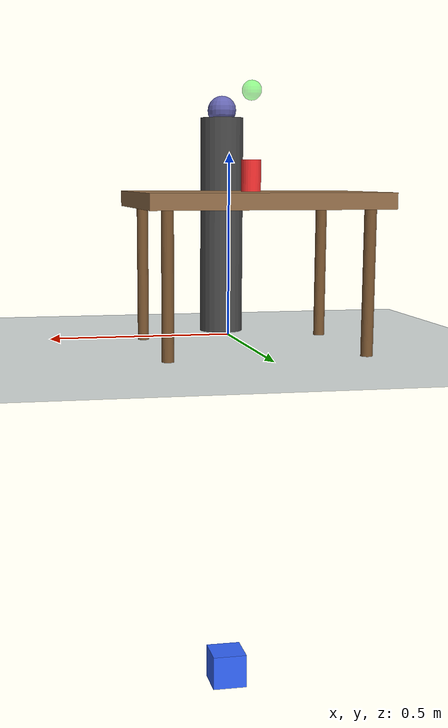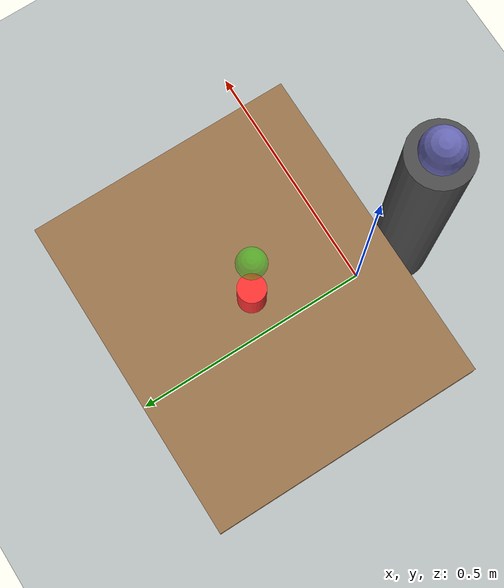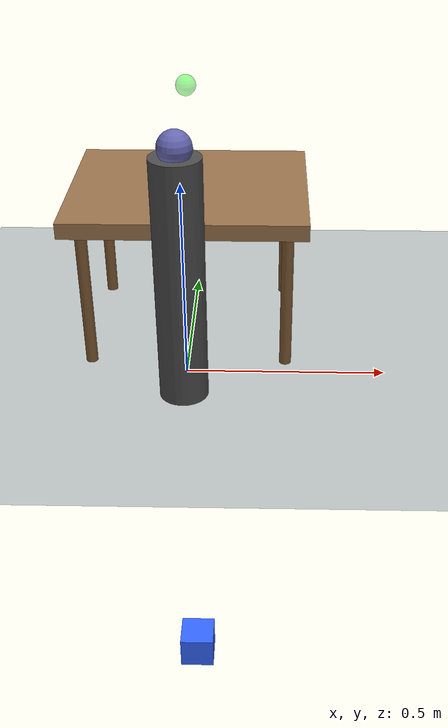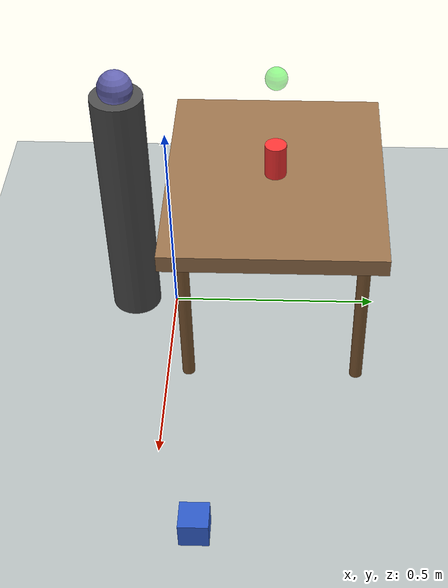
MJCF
<?xml version='1.0' encoding='utf-8'?>
<mujoco model="SimpleArm_scene">
  <option timestep="0.002" />
  <include file="bot.xml" />
  <statistic extent="2" center="0 0.1 0.4" />
  <visual>
    <headlight ambient=".4 .4 .4" diffuse=".8 .8 .8" specular="0.1 0.1 0.1" />
    <map znear="0.01" />
    <quality shadowsize="2048" />
  </visual>
  <asset>
    <texture type="skybox" builtin="gradient" rgb1="0.3 0.5 0.7" rgb2="0 0 0"
             width="512" height="3072" />
    <texture type="2d" name="groundplane" builtin="checker" mark="edge"
             rgb1="0.2 0.3 0.4" rgb2="0.1 0.2 0.3" markrgb="0.8 0.8 0.8"
             width="300" height="300" />
    <material name="groundplane" texture="groundplane" texuniform="true"
              texrepeat="5 5" reflectance="0.2" />
  </asset>
  <worldbody>
    <light directional="true" diffuse=".8 .8 .8" pos="0 0 10" dir="0 0 -1" />
    <geom name="floor" type="plane" size="2 2 0.1" material="groundplane"
          contype="1" conaffinity="3" />

    <!-- Workspace camera: angled overhead view of table and arm -->
    <camera name="camera_1_cam" fovy="60"
            pos="0.7 -0.4 1.0" xyaxes="-0.4 1 0 -0.3 -0.12 0.95" />

    <!-- Table surface (top at z=0.40) — contype=1 so arm (contype=2) passes through -->
    <geom name="table_surface" type="box" size="0.30 0.25 0.02"
          pos="0 0.25 0.38" rgba="0.6 0.45 0.3 1.0"
          contype="1" conaffinity="1"
          solref="0.005 1" solimp="0.999 0.9999 0.001 0.5 2" />
    <!-- Table legs -->
    <geom name="table_leg_1" type="cylinder" size="0.015 0.18"
          pos="0.25 0.05 0.18" rgba="0.5 0.35 0.2 1.0"
          contype="1" conaffinity="1" />
    <geom name="table_leg_2" type="cylinder" size="0.015 0.18"
          pos="-0.25 0.05 0.18" rgba="0.5 0.35 0.2 1.0"
          contype="1" conaffinity="1" />
    <geom name="table_leg_3" type="cylinder" size="0.015 0.18"
          pos="0.25 0.45 0.18" rgba="0.5 0.35 0.2 1.0"
          contype="1" conaffinity="1" />
    <geom name="table_leg_4" type="cylinder" size="0.015 0.18"
          pos="-0.25 0.45 0.18" rgba="0.5 0.35 0.2 1.0"
          contype="1" conaffinity="1" />

    <!-- Cup: free body on the table (graspable object) -->
    <body name="cup" pos="0 0.25 0.44">
      <freejoint name="cup_joint" />
      <inertial pos="0 0 0" mass="0.05"
                fullinertia="0.00002 0.00002 0.00001 0 0 0" />
      <geom name="cup_geom" type="cylinder" size="0.025 0.04"
            rgba="1.0 0.2 0.2 1.0" friction="1.5 0.5 0.01"
            contype="3" conaffinity="3" />
    </body>

    <!-- Target: visual marker for lift goal (where to bring the cup) -->
    <body name="target" mocap="true" pos="0 0.25 0.65">
      <geom name="target_marker" type="sphere" size="0.025"
            rgba="0.0 1.0 0.0 0.4" contype="0" conaffinity="0" />
    </body>

    <!-- Distractors (hidden below ground, required by base env) -->
    <body name="distractor_0" mocap="true" pos="0 0 -1">
      <geom name="distractor_0_cube" type="box" size="0.05 0.05 0.05"
            rgba="0.2 0.4 1.0 1.0" contype="0" conaffinity="0" />
    </body>
    <body name="distractor_1" mocap="true" pos="0 0 -1">
      <geom name="distractor_1_cube" type="box" size="0.05 0.05 0.05"
            rgba="0.2 0.9 0.3 1.0" contype="0" conaffinity="0" />
    </body>
    <body name="distractor_2" mocap="true" pos="0 0 -1">
      <geom name="distractor_2_cube" type="box" size="0.05 0.05 0.05"
            rgba="0.9 0.2 0.2 1.0" contype="0" conaffinity="0" />
    </body>
    <body name="distractor_3" mocap="true" pos="0 0 -1">
      <geom name="distractor_3_cube" type="box" size="0.05 0.05 0.05"
            rgba="0.7 0.3 0.9 1.0" contype="0" conaffinity="0" />
    </body>
  </worldbody>
</mujoco>

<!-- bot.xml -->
<mujoco model="SimpleArm">
  <compiler angle="radian" />

  <default>
    <joint limited="true" damping="1.0" armature="0.01" />
    <!-- Arm geoms use contype=2: collide with cup (3) and floor (affi=3), not table (1) -->
    <geom contype="2" conaffinity="2" condim="3" friction="1.0 0.5 0.01" />
    <position ctrlrange="-1 1" kp="50" />
  </default>

  <worldbody>
    <body name="base" pos="0 -0.10 0">
      <!-- Pedestal: raises the arm above the table surface -->
      <geom name="pedestal" type="cylinder" size="0.06 0.30"
            pos="0 0 0.30" rgba="0.3 0.3 0.3 1.0"
            contype="1" conaffinity="1" />

      <!-- Shoulder yaw: rotates arm around vertical axis -->
      <body name="shoulder" pos="0 0 0.62">
        <inertial pos="0 0 0" mass="1.0"
                  fullinertia="0.002 0.002 0.002 0 0 0" />
        <joint name="shoulder_yaw" type="hinge" axis="0 0 1"
               range="-3.14159 3.14159" damping="5.0" />
        <geom name="shoulder_geom" type="sphere" size="0.04"
              rgba="0.4 0.4 0.7 1.0" />

        <!-- Shoulder pitch: tilts arm up/down -->
        <body name="upper_arm" pos="0 0 0">
          <inertial pos="0 0 -0.125" mass="2.0"
                    fullinertia="0.02 0.02 0.003 0 0 0" />
          <joint name="shoulder_pitch" type="hinge" axis="1 0 0"
                 range="-1.571 2.618" damping="5.0" />
          <geom name="upper_arm_geom" type="capsule"
                fromto="0 0 0 0 0 -0.25" size="0.025"
                rgba="0.4 0.4 0.7 1.0" />

          <!-- Elbow: bends forearm -->
          <body name="forearm" pos="0 0 -0.25">
            <inertial pos="0 0 -0.10" mass="1.0"
                      fullinertia="0.008 0.008 0.001 0 0 0" />
            <joint name="elbow" type="hinge" axis="1 0 0"
                   range="-2.356 0" damping="3.0" />
            <geom name="forearm_geom" type="capsule"
                  fromto="0 0 0 0 0 -0.20" size="0.02"
                  rgba="0.4 0.7 0.4 1.0" />

            <!-- Wrist pitch: tilts end effector -->
            <body name="wrist" pos="0 0 -0.20">
              <inertial pos="0 0 0" mass="0.3"
                        fullinertia="0.0005 0.0005 0.0005 0 0 0" />
              <joint name="wrist_pitch" type="hinge" axis="1 0 0"
                     range="-1.571 1.571" damping="1.0" />

              <!-- Wrist roll: rotates end effector -->
              <body name="wrist_roll_link" pos="0 0 0">
                <inertial pos="0 0 -0.015" mass="0.2"
                          fullinertia="0.0002 0.0002 0.0001 0 0 0" />
                <joint name="wrist_roll" type="hinge" axis="0 0 1"
                       range="-3.14159 3.14159" damping="0.2" />
                <geom name="wrist_geom" type="cylinder" size="0.018 0.015"
                      rgba="0.7 0.4 0.4 1.0" />

                <!-- Gripper base -->
                <body name="gripper_base" pos="0 0 -0.025">
                  <inertial pos="0 0 0" mass="0.1"
                            fullinertia="0.0001 0.0001 0.0001 0 0 0" />
                  <geom name="gripper_base_geom" type="box"
                        size="0.015 0.025 0.008"
                        rgba="0.3 0.3 0.3 1.0" />

                  <!-- Site at the gripper center for distance tracking -->
                  <site name="gripper_site" pos="0 0 -0.05" size="0.005" />

                  <!-- Left finger (slides outward in -Y to open) -->
                  <body name="finger_left" pos="0 -0.005 -0.008">
                    <inertial pos="0 0 -0.035" mass="0.05"
                              fullinertia="0.00002 0.00002 0.000005 0 0 0" />
                    <joint name="finger_left" type="slide" axis="0 -1 0"
                           range="0 0.025" damping="0.5" />
                    <geom name="finger_left_geom" type="box"
                          size="0.008 0.005 0.035"
                          pos="0 0 -0.035"
                          rgba="0.8 0.8 0.3 1.0" friction="2.0 1.0 0.01" />
                    <!-- Touch sensor site on inner face -->
                    <site name="finger_left_touch" pos="0 0.005 -0.035"
                          size="0.005" />
                  </body>

                  <!-- Right finger (slides outward in +Y to open) -->
                  <body name="finger_right" pos="0 0.005 -0.008">
                    <inertial pos="0 0 -0.035" mass="0.05"
                              fullinertia="0.00002 0.00002 0.000005 0 0 0" />
                    <joint name="finger_right" type="slide" axis="0 1 0"
                           range="0 0.025" damping="0.5" />
                    <geom name="finger_right_geom" type="box"
                          size="0.008 0.005 0.035"
                          pos="0 0 -0.035"
                          rgba="0.8 0.8 0.3 1.0" friction="2.0 1.0 0.01" />
                    <!-- Touch sensor site on inner face -->
                    <site name="finger_right_touch" pos="0 -0.005 -0.035"
                          size="0.005" />
                  </body>
                </body>
              </body>
            </body>
          </body>
        </body>
      </body>
    </body>
  </worldbody>

  <!-- Couple the two fingers so one actuator controls both -->
  <equality>
    <joint joint1="finger_left" joint2="finger_right"
           polycoef="0 1 0 0 0" />
  </equality>

  <contact>
    <!-- Exclude adjacent body pairs from self-collision -->
    <exclude body1="base" body2="shoulder" />
    <exclude body1="shoulder" body2="upper_arm" />
    <exclude body1="upper_arm" body2="forearm" />
    <exclude body1="forearm" body2="wrist" />
    <exclude body1="wrist" body2="wrist_roll_link" />
    <exclude body1="wrist_roll_link" body2="gripper_base" />
    <exclude body1="gripper_base" body2="finger_left" />
    <exclude body1="gripper_base" body2="finger_right" />
    <!-- Arm hangs inside pedestal at rest — exclude base vs all arm bodies -->
    <exclude body1="base" body2="upper_arm" />
    <exclude body1="base" body2="forearm" />
    <exclude body1="base" body2="wrist" />
    <exclude body1="base" body2="wrist_roll_link" />
    <exclude body1="base" body2="gripper_base" />
    <exclude body1="base" body2="finger_left" />
    <exclude body1="base" body2="finger_right" />
    <!-- Near-joint geom overlaps (wrist_geom is on wrist_roll_link body) -->
    <exclude body1="forearm" body2="wrist_roll_link" />
    <exclude body1="forearm" body2="gripper_base" />
  </contact>

  <actuator>
    <!-- 5-DOF arm joints (position control, ctrlrange matches joint range) -->
    <position name="shoulder_yaw_motor" joint="shoulder_yaw" kp="200"
              ctrlrange="-3.14159 3.14159" />
    <position name="shoulder_pitch_motor" joint="shoulder_pitch" kp="200"
              ctrlrange="-1.571 2.618" />
    <position name="elbow_motor" joint="elbow" kp="100"
              ctrlrange="-2.356 0" />
    <position name="wrist_pitch_motor" joint="wrist_pitch" kp="50"
              ctrlrange="-1.571 1.571" />
    <position name="wrist_roll_motor" joint="wrist_roll" kp="20"
              ctrlrange="-3.14159 3.14159" />
    <!-- Gripper (coupled: controls both fingers via equality constraint) -->
    <position name="gripper_motor" joint="finger_left" kp="40"
              ctrlrange="0 0.025" />
  </actuator>

  <sensor>
    <!-- Joint position sensors (5 arm + 1 gripper) -->
    <jointpos name="shoulder_yaw_pos" joint="shoulder_yaw" />
    <jointpos name="shoulder_pitch_pos" joint="shoulder_pitch" />
    <jointpos name="elbow_pos" joint="elbow" />
    <jointpos name="wrist_pitch_pos" joint="wrist_pitch" />
    <jointpos name="wrist_roll_pos" joint="wrist_roll" />
    <jointpos name="finger_pos" joint="finger_left" />
    <!-- Joint velocity sensors (5 arm + 1 gripper) -->
    <jointvel name="shoulder_yaw_vel" joint="shoulder_yaw" />
    <jointvel name="shoulder_pitch_vel" joint="shoulder_pitch" />
    <jointvel name="elbow_vel" joint="elbow" />
    <jointvel name="wrist_pitch_vel" joint="wrist_pitch" />
    <jointvel name="wrist_roll_vel" joint="wrist_roll" />
    <jointvel name="finger_vel" joint="finger_left" />
    <!-- Fingertip touch sensors -->
    <touch name="finger_left_touch" site="finger_left_touch" />
    <touch name="finger_right_touch" site="finger_right_touch" />
  </sensor>
</mujoco>
